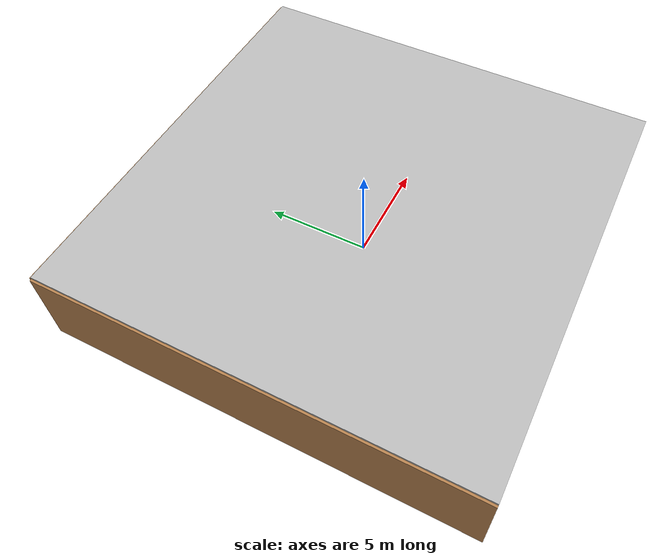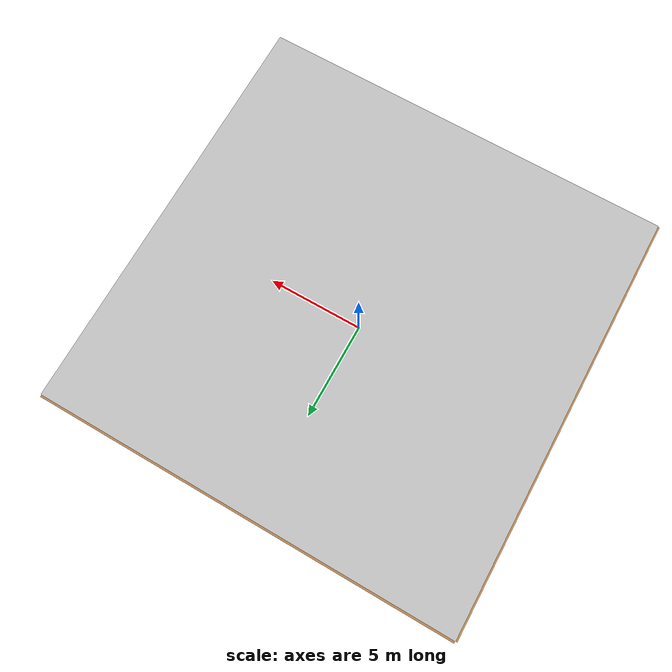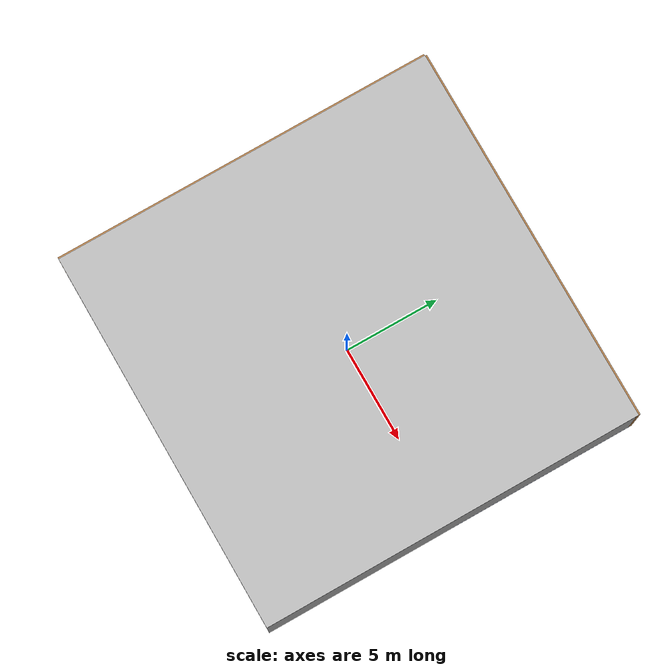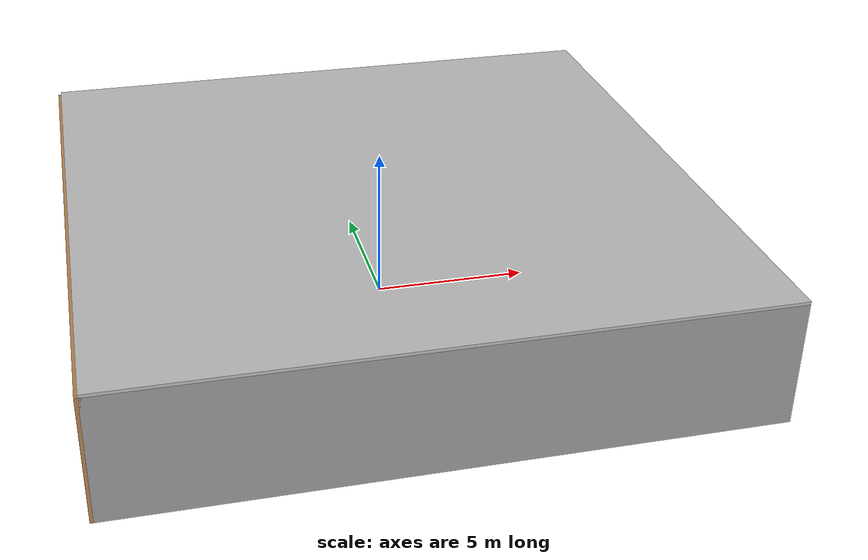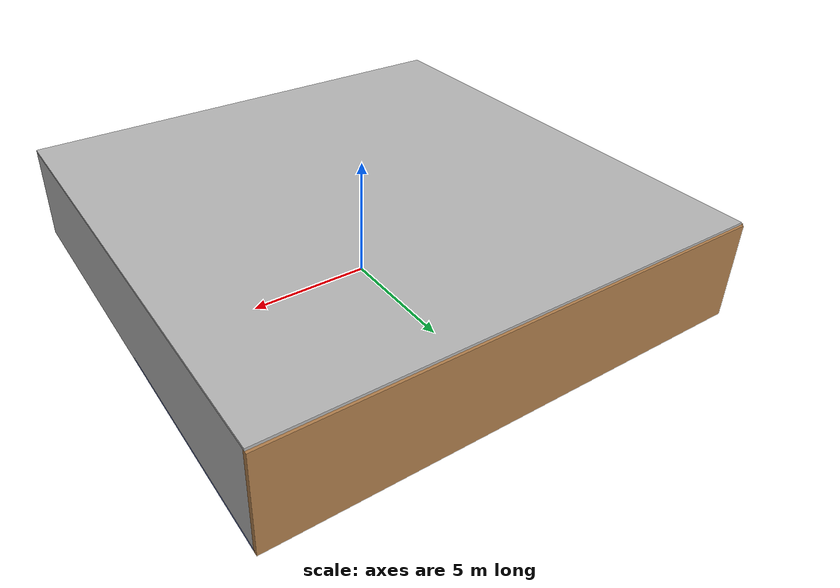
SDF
<sdf version="1.4">
 <world name="default">
  <physics type="ode">
   <max_step_size>0.001</max_step_size>
   <real_time_factor>1</real_time_factor>
   <real_time_update_rate>1000</real_time_update_rate>
   <gravity>0 0 -9.8</gravity>
  </physics>
  <scene><ambient>0.4 0.4 0.4 1</ambient><background>0.7 0.7 0.7 1</background><shadows>1</shadows></scene>
  <model name="Surrounding">
   <static>1</static>
   <link name="Ceiling">
    <collision name="Ceiling_Collision"><geometry><box><size>20 20 0.1</size></box></geometry></collision>
    <visual name="Ceiling_Visual">
     <geometry><box><size>20 20 0.1</size></box></geometry>
     <material>
      <script><uri>file://media/materials/scripts/gazebo.material</uri><name>Gazebo/Pioneer2Body</name></script>
     </material>
    </visual>
    <pose>0 0 4.05 0 0 0</pose>
   </link>
   <link name="Wall_South">
    <collision name="Wall_South_Collision">
     <geometry><box><size>20 0 4</size></box></geometry>
     <pose>0 0 2 0 -0 0</pose>
    </collision>
    <visual name="Wall_South_Visual">
     <pose>0 0 2 0 -0 0</pose>
     <geometry><box><size>20 0 4</size></box></geometry>
     <material>
      <script><uri>file://media/materials/scripts/gazebo.material</uri><name>Gazebo/Grey</name></script>
     </material>
    </visual>
    <velocity_decay><linear>0</linear><angular>0</angular></velocity_decay>
    <pose>0 -10 0 0 -0 0</pose>
   </link>
   <link name="Wall_East">
    <collision name="Wall_21_Collision">
     <geometry><box><size>20 0 4</size></box></geometry>
     <pose>0 0 2 0 -0 0</pose>
    </collision>
    <visual name="Wall_21_Visual">
     <pose>0 0 2 0 -0 0</pose>
     <geometry><box><size>20 0 4</size></box></geometry>
     <material>
      <script><uri>file://media/materials/scripts/gazebo.material</uri><name>Gazebo/JointAnchor</name></script>
     </material>
    </visual>
    <velocity_decay><linear>0</linear><angular>0</angular></velocity_decay>
    <pose>10 0 0 0 -0 1.5708</pose>
   </link>
   <link name="Wall_North">
    <collision name="Wall_22_Collision">
     <geometry><box><size>20 0.2 4</size></box></geometry>
     <pose>0 0 2 0 -0 0</pose>
    </collision>
    <visual name="Wall_22_Visual">
     <pose>0 0 2 0 -0 0</pose>
     <geometry><box><size>20 0.2 4</size></box></geometry>
     <material>
      <script><uri>file://media/materials/scripts/gazebo.material</uri><name>Gazebo/Wood</name></script>
     </material>
    </visual>
    <velocity_decay><linear>0</linear><angular>0</angular></velocity_decay>
    <pose>0 10 0 0 -0 0</pose>
   </link>
   <link name="Wall_West">
    <collision name="Wall_23_Collision">
     <geometry><box><size>20 0.2 4</size></box></geometry>
     <pose>0 0 2 0 -0 0</pose>
    </collision>
    <visual name="Wall_23_Visual">
     <pose>0 0 2 0 -0 0</pose>
     <geometry><box><size>20 0.2 4</size></box></geometry>
     <material>
      <script><uri>file://media/materials/scripts/gazebo.material</uri><name>Gazebo/WoodPallet</name></script>
     </material>
    </visual>
    <velocity_decay><linear>0</linear><angular>0</angular></velocity_decay>
    <pose>-10 0 0 0 0 -1.5708</pose>
   </link>
   <link name="Ground_link">
    <collision name="collision">
     <pose>0 0 .05 0 -0 0</pose>
     <geometry><box><size>20 20 0.1</size></box></geometry>
    </collision>
    <visual name="visual">
     <pose>0 0 .05 0 -0 0</pose>
     <geometry><box><size>20 20 0.1</size></box></geometry>
     <material>
      <script><uri>file://media/materials/scripts/gazebo.material</uri><name>Gazebo/BlueTransparent</name></script>
     </material>
    </visual>
   </link>
   <static>1</static>
  </model>
  <spherical_coordinates>
   <surface_model>EARTH_WGS84</surface_model>
   <latitude_deg>0</latitude_deg>
   <longitude_deg>0</longitude_deg>
   <elevation>0</elevation>
   <heading_deg>0</heading_deg>
  </spherical_coordinates>
  <light name="lightball_0" type="diffuse">
   <diffuse>0.8 0.8 0.8 1</diffuse>
   <specular>0.2 0.2 0.2 1</specular>
   <attenuation>
    <range>100</range>
    <constant>0.7</constant>
    <linear>0.01</linear>
    <quadratic>0.001</quadratic>
   </attenuation>
   <direction>-0.5 0.1 -0.9</direction>
   <pose>-6.08244027018 -3.7085315761 3.89244078338 0 0 0</pose>
  </light>
  <light name="lightball_1" type="diffuse">
   <diffuse>0.8 0.8 0.8 1</diffuse>
   <specular>0.2 0.2 0.2 1</specular>
   <attenuation>
    <range>100</range>
    <constant>0.7</constant>
    <linear>0.01</linear>
    <quadratic>0.001</quadratic>
   </attenuation>
   <direction>-0.5 0.1 -0.9</direction>
   <pose>8.34605960984 1.72993761178 1.88848126673 0 0 0</pose>
  </light>
  <light name="lightball_2" type="diffuse">
   <diffuse>0.8 0.8 0.8 1</diffuse>
   <specular>0.2 0.2 0.2 1</specular>
   <attenuation>
    <range>100</range>
    <constant>0.7</constant>
    <linear>0.01</linear>
    <quadratic>0.001</quadratic>
   </attenuation>
   <direction>-0.5 0.1 -0.9</direction>
   <pose>-8.30338338129 -5.17009567223 3.46935474127 0 0 0</pose>
  </light>
  <light name="lightball_3" type="diffuse">
   <diffuse>0.8 0.8 0.8 1</diffuse>
   <specular>0.2 0.2 0.2 1</specular>
   <attenuation>
    <range>100</range>
    <constant>0.7</constant>
    <linear>0.01</linear>
    <quadratic>0.001</quadratic>
   </attenuation>
   <direction>-0.5 0.1 -0.9</direction>
   <pose>6.95639825327 7.09420122525 1.18346005924 0 0 0</pose>
  </light>
  <light name="lightball_4" type="diffuse">
   <diffuse>0.8 0.8 0.8 1</diffuse>
   <specular>0.2 0.2 0.2 1</specular>
   <attenuation>
    <range>100</range>
    <constant>0.7</constant>
    <linear>0.01</linear>
    <quadratic>0.001</quadratic>
   </attenuation>
   <direction>-0.5 0.1 -0.9</direction>
   <pose>-5.98427321657 2.87602098449 0.757829945454 0 0 0</pose>
  </light>
  <light name="lightball_5" type="diffuse">
   <diffuse>0.8 0.8 0.8 1</diffuse>
   <specular>0.2 0.2 0.2 1</specular>
   <attenuation>
    <range>100</range>
    <constant>0.7</constant>
    <linear>0.01</linear>
    <quadratic>0.001</quadratic>
   </attenuation>
   <direction>-0.5 0.1 -0.9</direction>
   <pose>-9.76807623745 -0.88724115403 1.28614893433 0 0 0</pose>
  </light>
  <light name="lightball_6" type="diffuse">
   <diffuse>0.8 0.8 0.8 1</diffuse>
   <specular>0.2 0.2 0.2 1</specular>
   <attenuation>
    <range>100</range>
    <constant>0.7</constant>
    <linear>0.01</linear>
    <quadratic>0.001</quadratic>
   </attenuation>
   <direction>-0.5 0.1 -0.9</direction>
   <pose>1.97735445047 -1.60322233358 3.54775184059 0 0 0</pose>
  </light>
  <include><uri>model://table</uri><pose>-7.67212067839 -0.949407409604 0 0 0 1.24746235655</pose></include>
  <include>
   <uri>model://construction_cone</uri>
   <pose>-7.56644069933 5.03845210466 0 0 0 2.93336880343</pose>
  </include>
  <include><uri>model://cabinet</uri><pose>1.41288035307 -1.44859567237 0 0 0 1.45544081287</pose></include>
  <include><uri>model://cabinet</uri><pose>2.04835365252 2.24809569193 0 0 0 1.35732543014</pose></include>
  <include><uri>model://cabinet</uri><pose>0.932220363663 4.18568463878 0 0 0 0.844179051602</pose></include>
  <include><uri>model://cabinet</uri><pose>8.21135781186 -1.46631157507 0 0 0 0.528222207856</pose></include>
  <include><uri>model://cabinet</uri><pose>7.31390359183 8.02150155751 0 0 0 1.5489911576</pose></include>
 </world>
</sdf>

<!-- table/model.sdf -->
<sdf version="1.5">
  <model name="table">
    <static>true</static>
    <link name="link">
      <collision name="surface">
        <pose>0 0 1.0 0 0 0</pose>
        <geometry>
          <box>
            <size>1.5 0.8 0.03</size>
          </box>
        </geometry>
        <surface>
          <friction>
            <ode>
              <mu>0.6</mu>
              <mu2>0.6</mu2>
            </ode>
          </friction>
        </surface>
      </collision>
      <visual name="visual1">
        <pose>0 0 1.0 0 0 0</pose>
        <geometry>
          <box>
            <size>1.5 0.8 0.03</size>
          </box>
        </geometry>
        <material>
          <script>
            <uri>model://media/materials/scripts/gazebo.material</uri>
            <name>Gazebo/Wood</name>
          </script>
        </material>
      </visual>
      <collision name="front_left_leg">
        <pose>0.68 0.38 0.5 0 0 0</pose>
        <geometry>
          <cylinder>
            <radius>0.02</radius>
            <length>1.0</length>
          </cylinder>
        </geometry>
      </collision>
      <visual name="front_left_leg">
        <pose>0.68 0.38 0.5 0 0 0</pose>
        <geometry>
          <cylinder>
            <radius>0.02</radius>
            <length>1.0</length>
          </cylinder>
        </geometry>
        <material>
          <script>
            <uri>model://media/materials/scripts/gazebo.material</uri>
            <name>Gazebo/Grey</name>
          </script>
        </material>
      </visual>
      <collision name="front_right_leg">
        <pose>0.68 -0.38 0.5 0 0 0</pose>
        <geometry>
          <cylinder>
            <radius>0.02</radius>
            <length>1.0</length>
          </cylinder>
        </geometry>
      </collision>
      <visual name="front_right_leg">
        <pose>0.68 -0.38 0.5 0 0 0</pose>
        <geometry>
          <cylinder>
            <radius>0.02</radius>
            <length>1.0</length>
          </cylinder>
        </geometry>
        <material>
          <script>
            <uri>model://media/materials/scripts/gazebo.material</uri>
            <name>Gazebo/Grey</name>
          </script>
        </material>
      </visual>
      <collision name="back_right_leg">
        <pose>-0.68 -0.38 0.5 0 0 0</pose>
        <geometry>
          <cylinder>
            <radius>0.02</radius>
            <length>1.0</length>
          </cylinder>
        </geometry>
      </collision>
      <visual name="back_right_leg">
        <pose>-0.68 -0.38 0.5 0 0 0</pose>
        <geometry>
          <cylinder>
            <radius>0.02</radius>
            <length>1.0</length>
          </cylinder>
        </geometry>
        <material>
          <script>
            <uri>model://media/materials/scripts/gazebo.material</uri>
            <name>Gazebo/Grey</name>
          </script>
        </material>
      </visual>
      <collision name="back_left_leg">
        <pose>-0.68 0.38 0.5 0 0 0</pose>
        <geometry>
          <cylinder>
            <radius>0.02</radius>
            <length>1.0</length>
          </cylinder>
        </geometry>
      </collision>
      <visual name="back_left_leg">
        <pose>-0.68 0.38 0.5 0 0 0</pose>
        <geometry>
          <cylinder>
            <radius>0.02</radius>
            <length>1.0</length>
          </cylinder>
        </geometry>
        <material>
          <script>
            <uri>model://media/materials/scripts/gazebo.material</uri>
            <name>Gazebo/Grey</name>
          </script>
        </material>
      </visual>
    </link>
  </model>
</sdf>

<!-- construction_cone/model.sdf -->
<sdf version="1.5">
  <model name="Construction Cone">
    <link name="link">
      <collision name="collision">
        <geometry>
          <mesh>
            <scale>10 10 10</scale>
            <uri>file://isr-testbed/construction_cone/meshes/construction_cone.dae</uri>
          </mesh>
        </geometry>
      </collision>
      <visual name="visual">
        <geometry>
          <mesh>
            <scale>10 10 10</scale>
            <uri>file://isr-testbed/construction_cone/meshes/construction_cone.dae</uri>
          </mesh>
        </geometry>
      </visual>
    </link>
  </model>
</sdf>

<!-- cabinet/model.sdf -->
<sdf version="1.5">
  <model name="cabinet">
    <static>true</static>
    <link name="cabinet_bottom_plate">
      <inertial>
        <pose>0 0 -1 0 0 0</pose>
        <inertia>
          <ixx>2.050000</ixx>
          <ixy>0</ixy>
          <ixz>0</ixz>
          <iyy>2.050000</iyy>
          <iyz>0</iyz>
          <izz>2.050000</izz>
        </inertia>
        <mass>25.000000</mass>
      </inertial>
      <collision name="cabinet_bottom_plate_geom">
        <pose>0 0 0.010000 0 0 0</pose>
        <geometry>
          <box>
            <size>0.450000 0.450000 0.020000</size>
          </box>
        </geometry>
      </collision>
      <visual name="cabinet_bottom_plate_geom_visual">
        <pose>0 0 0.010000 0 0 0</pose>
        <geometry>
          <box>
            <size>0.450000 0.450000 0.020000</size>
          </box>
        </geometry>
        <material>
          <script>
            <uri>model://media/materials/scripts/gazebo.material</uri>
            <name>Gazebo/Wood</name>
          </script>
        </material>
      </visual>
      <collision name="cabinet_bottom_plate_geom_cabinet_back_plate">
        <pose>0.235000 0 0.510000 0 0 0</pose>
        <geometry>
          <box>
            <size>0.020000 0.450000 1.020000</size>
          </box>
        </geometry>
      </collision>
      <visual name="cabinet_bottom_plate_geom_cabinet_back_plate_visual">
        <pose>0.235000 0 0.510000 0 0 0</pose>
        <geometry>
          <box>
            <size>0.020000 0.450000 1.020000</size>
          </box>
        </geometry>
        <material>
          <script>
            <uri>model://media/materials/scripts/gazebo.material</uri>
            <name>Gazebo/Wood</name>
          </script>
        </material>
      </visual>
      <collision name="cabinet_bottom_plate_geom_cabinet_left_plate">
        <pose>0 0.235000 0.510000 0 0 0</pose>
        <geometry>
          <box>
            <size>0.450000 0.020000 1.020000</size>
          </box>
        </geometry>
      </collision>
      <visual name="cabinet_bottom_plate_geom_cabinet_left_plate_visual">
        <pose>0 0.235000 0.510000 0 0 0</pose>
        <geometry>
          <box>
            <size>0.450000 0.020000 1.020000</size>
          </box>
        </geometry>
        <material>
          <script>
            <uri>model://media/materials/scripts/gazebo.material</uri>
            <name>Gazebo/Wood</name>
          </script>
        </material>
      </visual>
      <collision name="cabinet_bottom_plate_geom_cabinet_middle_plate">
        <pose>0 0 0.510000 0 0 0</pose>
        <geometry>
          <box>
            <size>0.450000 0.450000 0.020000</size>
          </box>
        </geometry>
      </collision>
      <visual name="cabinet_bottom_plate_geom_cabinet_middle_plate_visual">
        <pose>0 0 0.510000 0 0 0</pose>
        <geometry>
          <box>
            <size>0.450000 0.450000 0.020000</size>
          </box>
        </geometry>
        <material>
          <script>
            <uri>model://media/materials/scripts/gazebo.material</uri>
            <name>Gazebo/Wood</name>
          </script>
        </material>
      </visual>
      <collision name="cabinet_bottom_plate_geom_cabinet_right_plate">
        <pose>0 -0.235000 0.510000 0 0 0</pose>
        <geometry>
          <box>
            <size>0.450000 0.020000 1.020000</size>
          </box>
        </geometry>
      </collision>
      <visual name="cabinet_bottom_plate_geom_cabinet_right_plate_visual">
        <pose>0 -0.235000 0.510000 0 0 0</pose>
        <geometry>
          <box>
            <size>0.450000 0.020000 1.020000</size>
          </box>
        </geometry>
        <material>
          <script>
            <uri>model://media/materials/scripts/gazebo.material</uri>
            <name>Gazebo/Wood</name>
          </script>
        </material>
      </visual>
      <collision name="cabinet_bottom_plate_geom_cabinet_top_plate">
        <pose>0 0 1.010000 0 0 0</pose>
        <geometry>
          <box>
            <size>0.450000 0.450000 0.020000</size>
          </box>
        </geometry>
      </collision>
      <visual name="cabinet_bottom_plate_geom_cabinet_top_plate_visual">
        <pose>0 0 1.010000 0 0 0</pose>
        <geometry>
          <box>
            <size>0.450000 0.450000 0.020000</size>
          </box>
        </geometry>
        <material>
          <script>
            <uri>model://media/materials/scripts/gazebo.material</uri>
            <name>Gazebo/Wood</name>
          </script>
        </material>
      </visual>
    </link>
  </model>
</sdf>
